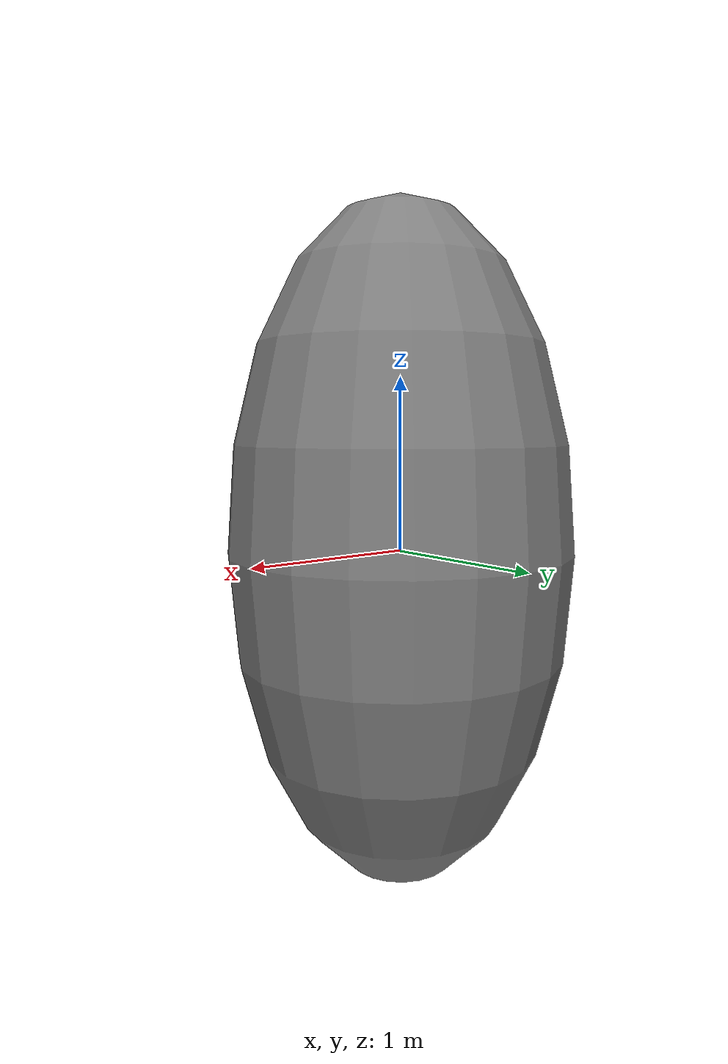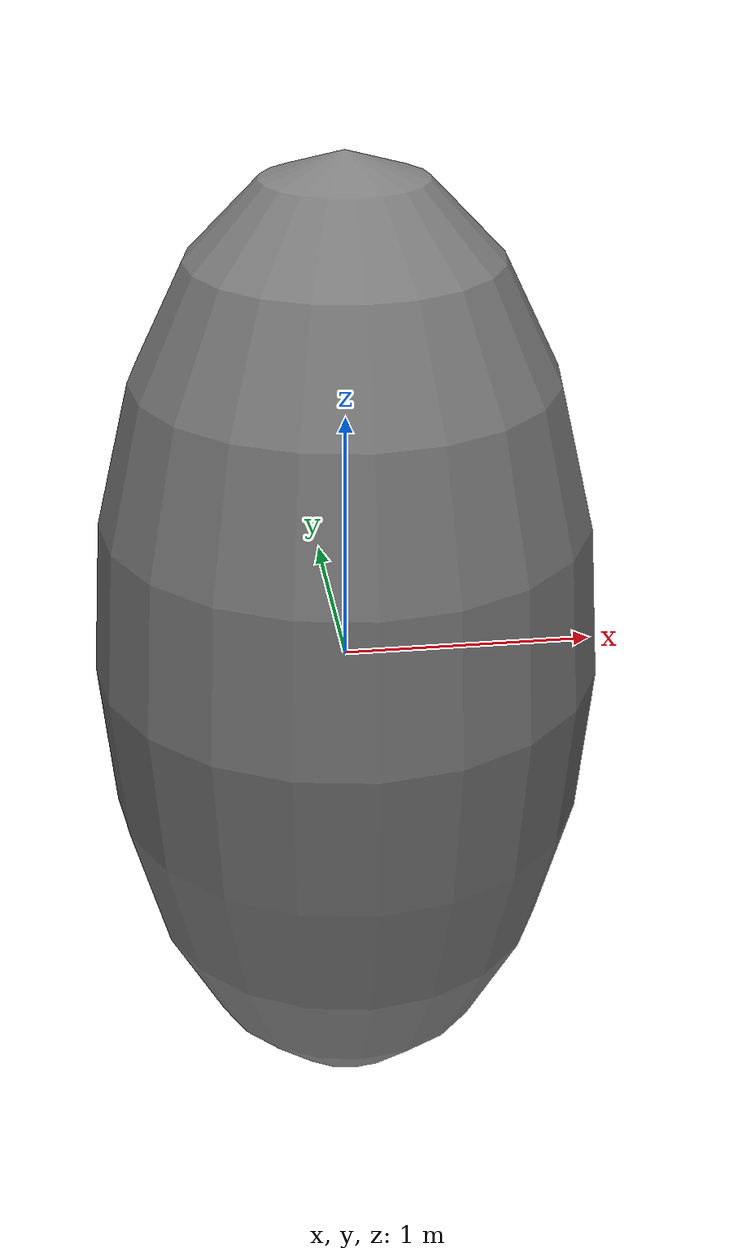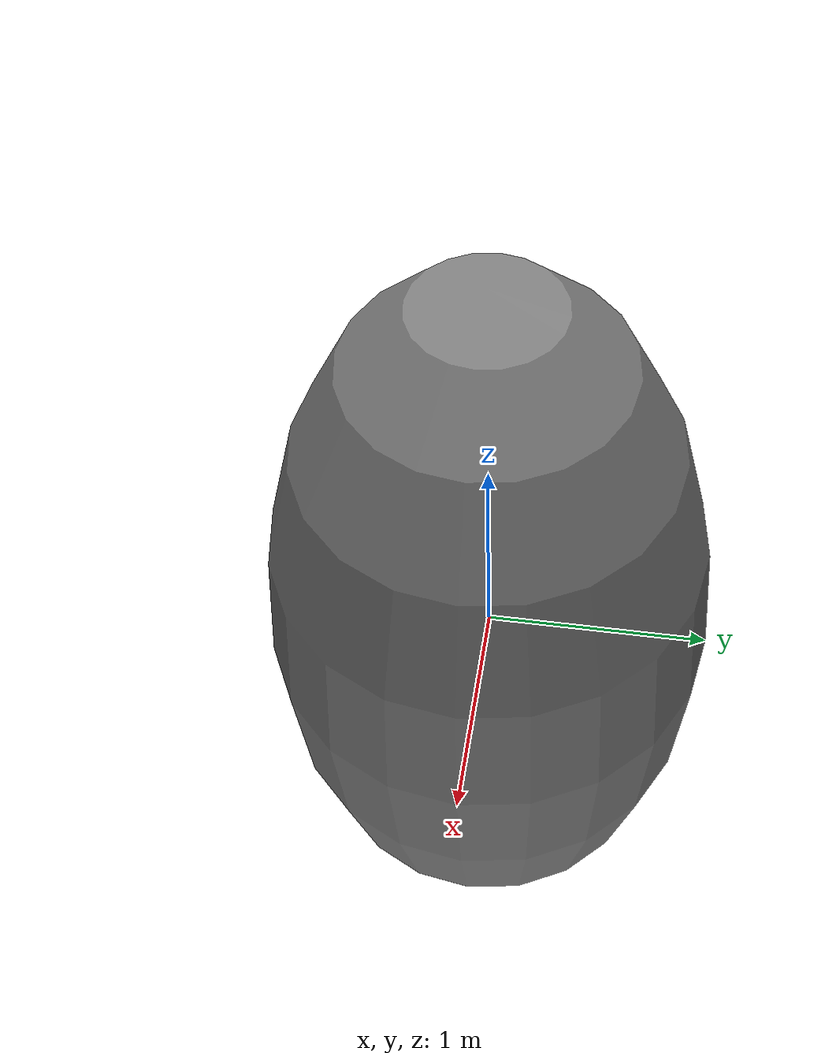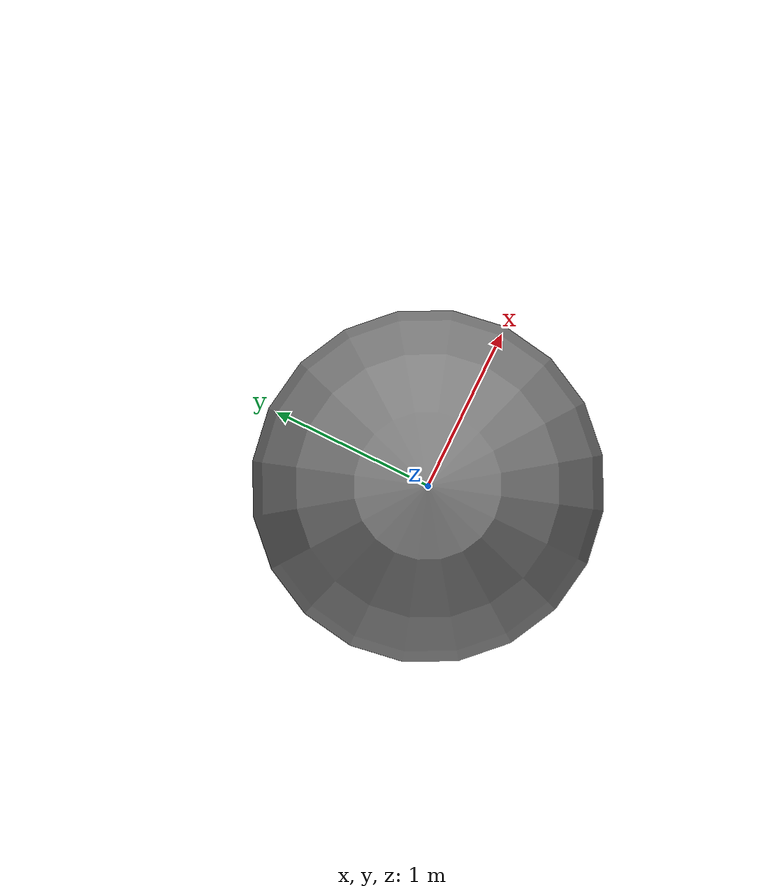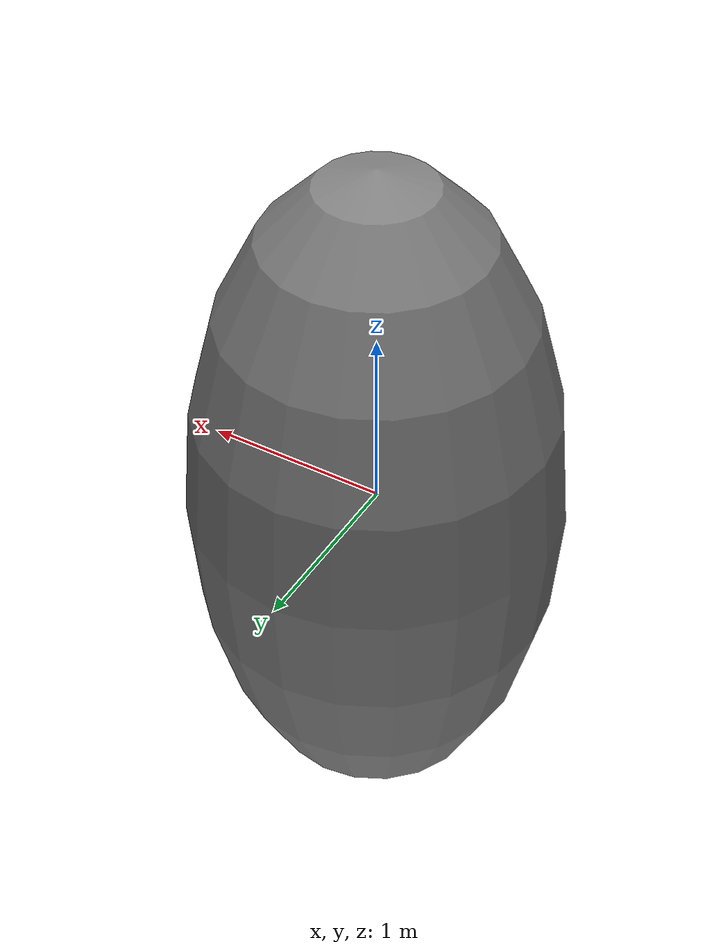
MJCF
<mujoco model="1dof">
  <compiler angle="radian" meshdir="assets"/>

  <worldbody>
    <body name="ellipse">
        <geom name="ellipse" type="ellipsoid" size="1.0 1.0 2.0"/>
        <joint name="joint" type="hinge" axis="1 0 0"/>
        <site name="ellipse"/>
    </body>

  </worldbody>

  <actuator>
    <motor name="ellipse" joint="joint" gear="1000"/>
  </actuator>

  <sensor>
    <torque name="torque" site="ellipse"/>
  </sensor>

</mujoco>
